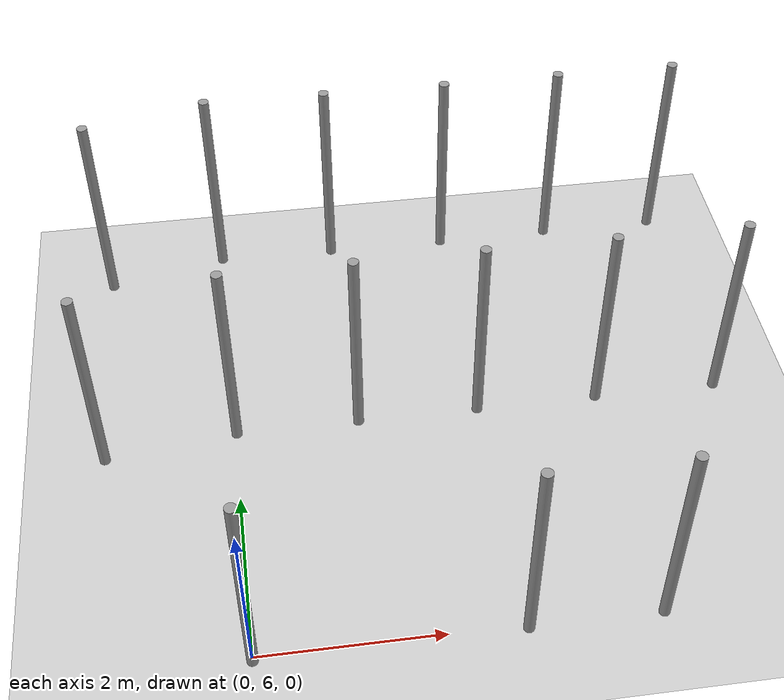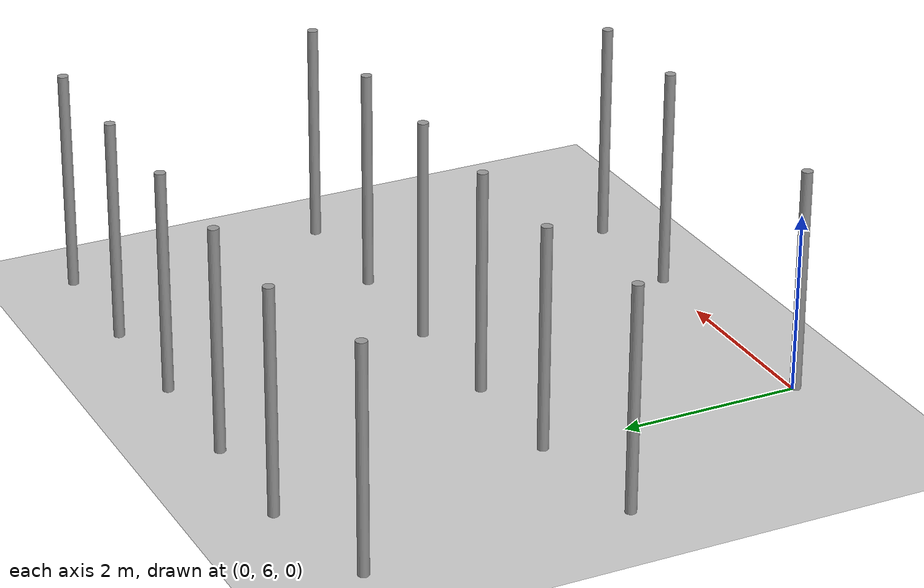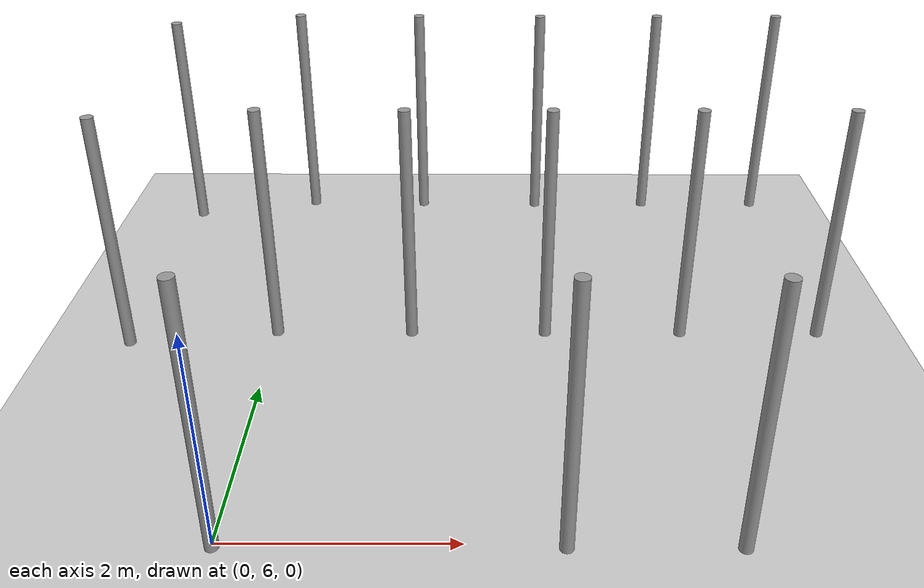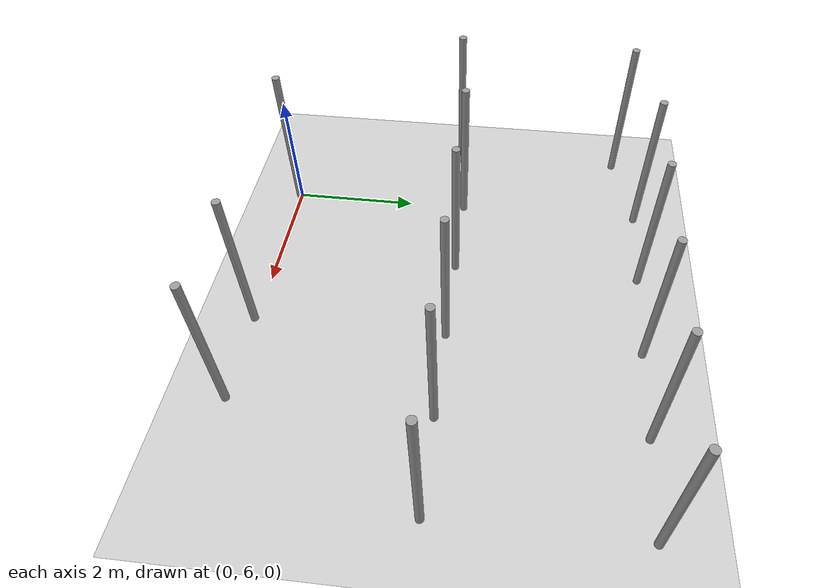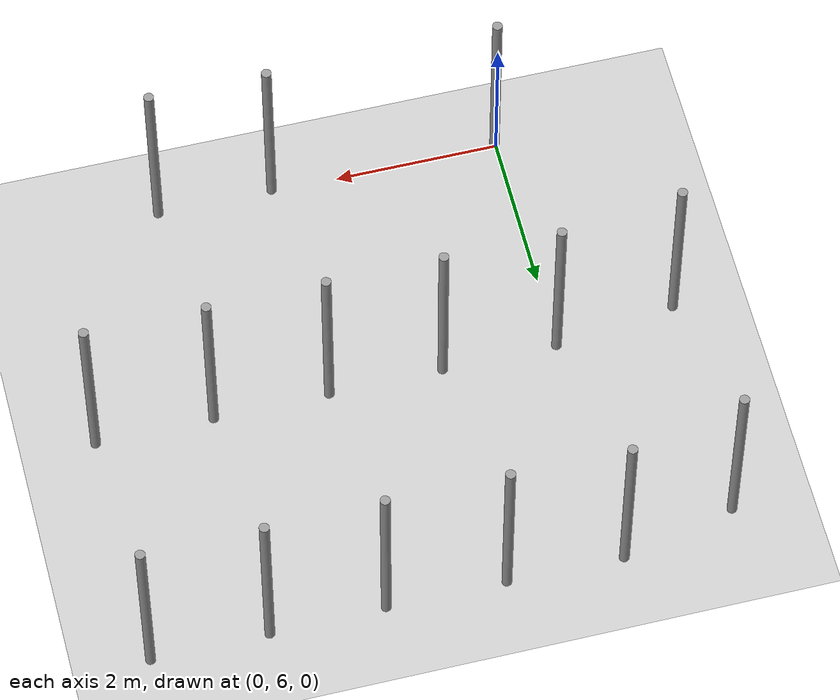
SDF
<sdf version="1.6">
 <world name="default">
  <model name="ground_plane">
   <static>1</static>
   <link name="link">
    <collision name="collision">
     <geometry><plane><normal>0 0 1</normal><size>100 100</size></plane></geometry>
     <surface><friction><ode><mu>100</mu><mu2>50</mu2></ode></friction></surface>
    </collision>
    <visual name="visual">
     <cast_shadows>0</cast_shadows>
     <geometry><plane><normal>0 0 1</normal><size>100 100</size></plane></geometry>
     <material>
      <script><uri>file://media/materials/scripts/gazebo.material</uri><name>Gazebo/Grey</name></script>
     </material>
    </visual>
   </link>
  </model>
  <model name="pole">
   <link name="link_0">
    <inertial>
     <mass>0.0364582</mass>
     <inertia>
      <ixx>0.00312124</ixx>
      <ixy>0</ixy>
      <ixz>0</ixz>
      <iyy>0.00312124</iyy>
      <iyz>0</iyz>
      <izz>0.00016615</izz>
     </inertia>
    </inertial>
    <visual name="visual">
     <geometry><cylinder><radius>0.06</radius><length>2.5</length></cylinder></geometry>
     <material>
      <lighting>1</lighting>
      <script><uri>file://media/materials/scripts/gazebo.material</uri><name>Gazebo/Grey</name></script>
      <ambient>0.3 0.3 0.3 1</ambient>
      <diffuse>0.7 0.7 0.7 1</diffuse>
      <specular>0.01 0.01 0.01 1</specular>
      <emissive>0 0 0 1</emissive>
      <shader type="vertex"><normal_map>__default__</normal_map></shader>
     </material>
    </visual>
    <collision name="collision">
     <geometry><cylinder><radius>0.06</radius><length>2.5</length></cylinder></geometry>
     <surface>
      <friction>
       <ode><mu>1</mu><mu2>1</mu2><fdir1>0 0 0</fdir1><slip1>0</slip1><slip2>0</slip2></ode>
       <torsional>
        <coefficient>1</coefficient>
        <patch_radius>0</patch_radius>
        <surface_radius>0</surface_radius>
        <use_patch_radius>1</use_patch_radius>
        <ode><slip>0</slip></ode>
       </torsional>
      </friction>
      <bounce><restitution_coefficient>0</restitution_coefficient><threshold>1e+06</threshold></bounce>
      <contact>
       <collide_without_contact>0</collide_without_contact>
       <collide_without_contact_bitmask>1</collide_without_contact_bitmask>
       <collide_bitmask>1</collide_bitmask>
       <ode>
        <soft_cfm>0</soft_cfm>
        <soft_erp>0.2</soft_erp>
        <kp>1e+13</kp>
        <kd>1</kd>
        <max_vel>0.01</max_vel>
        <min_depth>0</min_depth>
       </ode>
       <bullet>
        <split_impulse>1</split_impulse>
        <split_impulse_penetration_threshold>-0.01</split_impulse_penetration_threshold>
        <soft_cfm>0</soft_cfm>
        <soft_erp>0.2</soft_erp>
        <kp>1e+13</kp>
        <kd>1</kd>
       </bullet>
      </contact>
     </surface>
    </collision>
   </link>
   <static>0</static>
   <pose>0.00678 5.96185 1.25 -1e-06 -0 -0.022118</pose>
  </model>
  <model name="pole_0">
   <link name="link_0">
    <inertial>
     <mass>0.0364582</mass>
     <inertia>
      <ixx>0.00312124</ixx>
      <ixy>0</ixy>
      <ixz>0</ixz>
      <iyy>0.00312124</iyy>
      <iyz>0</iyz>
      <izz>0.00016615</izz>
     </inertia>
    </inertial>
    <visual name="visual">
     <geometry><cylinder><radius>0.06</radius><length>2.5</length></cylinder></geometry>
     <material>
      <lighting>1</lighting>
      <script><uri>file://media/materials/scripts/gazebo.material</uri><name>Gazebo/Grey</name></script>
      <ambient>0.3 0.3 0.3 1</ambient>
      <diffuse>0.7 0.7 0.7 1</diffuse>
      <specular>0.01 0.01 0.01 1</specular>
      <emissive>0 0 0 1</emissive>
      <shader type="vertex"><normal_map>__default__</normal_map></shader>
     </material>
    </visual>
    <collision name="collision">
     <geometry><cylinder><radius>0.06</radius><length>2.5</length></cylinder></geometry>
     <surface>
      <friction>
       <ode><mu>1</mu><mu2>1</mu2><fdir1>0 0 0</fdir1><slip1>0</slip1><slip2>0</slip2></ode>
       <torsional>
        <coefficient>1</coefficient>
        <patch_radius>0</patch_radius>
        <surface_radius>0</surface_radius>
        <use_patch_radius>1</use_patch_radius>
        <ode><slip>0</slip></ode>
       </torsional>
      </friction>
      <bounce><restitution_coefficient>0</restitution_coefficient><threshold>1e+06</threshold></bounce>
      <contact>
       <collide_without_contact>0</collide_without_contact>
       <collide_without_contact_bitmask>1</collide_without_contact_bitmask>
       <collide_bitmask>1</collide_bitmask>
       <ode>
        <soft_cfm>0</soft_cfm>
        <soft_erp>0.2</soft_erp>
        <kp>1e+13</kp>
        <kd>1</kd>
        <max_vel>0.01</max_vel>
        <min_depth>0</min_depth>
       </ode>
       <bullet>
        <split_impulse>1</split_impulse>
        <split_impulse_penetration_threshold>-0.01</split_impulse_penetration_threshold>
        <soft_cfm>0</soft_cfm>
        <soft_erp>0.2</soft_erp>
        <kp>1e+13</kp>
        <kd>1</kd>
       </bullet>
      </contact>
     </surface>
    </collision>
   </link>
   <static>0</static>
   <pose>0.013583 8.94195 1.24999 -1e-06 1e-06 -0.025233</pose>
  </model>
  <model name="pole_1">
   <link name="link_0">
    <inertial>
     <mass>0.0364582</mass>
     <inertia>
      <ixx>0.00312124</ixx>
      <ixy>0</ixy>
      <ixz>0</ixz>
      <iyy>0.00312124</iyy>
      <iyz>0</iyz>
      <izz>0.00016615</izz>
     </inertia>
    </inertial>
    <visual name="visual">
     <geometry><cylinder><radius>0.06</radius><length>2.5</length></cylinder></geometry>
     <material>
      <lighting>1</lighting>
      <script><uri>file://media/materials/scripts/gazebo.material</uri><name>Gazebo/Grey</name></script>
      <ambient>0.3 0.3 0.3 1</ambient>
      <diffuse>0.7 0.7 0.7 1</diffuse>
      <specular>0.01 0.01 0.01 1</specular>
      <emissive>0 0 0 1</emissive>
      <shader type="vertex"><normal_map>__default__</normal_map></shader>
     </material>
    </visual>
    <collision name="collision">
     <geometry><cylinder><radius>0.06</radius><length>2.5</length></cylinder></geometry>
     <surface>
      <friction>
       <ode><mu>1</mu><mu2>1</mu2><fdir1>0 0 0</fdir1><slip1>0</slip1><slip2>0</slip2></ode>
       <torsional>
        <coefficient>1</coefficient>
        <patch_radius>0</patch_radius>
        <surface_radius>0</surface_radius>
        <use_patch_radius>1</use_patch_radius>
        <ode><slip>0</slip></ode>
       </torsional>
      </friction>
      <bounce><restitution_coefficient>0</restitution_coefficient><threshold>1e+06</threshold></bounce>
      <contact>
       <collide_without_contact>0</collide_without_contact>
       <collide_without_contact_bitmask>1</collide_without_contact_bitmask>
       <collide_bitmask>1</collide_bitmask>
       <ode>
        <soft_cfm>0</soft_cfm>
        <soft_erp>0.2</soft_erp>
        <kp>1e+13</kp>
        <kd>1</kd>
        <max_vel>0.01</max_vel>
        <min_depth>0</min_depth>
       </ode>
       <bullet>
        <split_impulse>1</split_impulse>
        <split_impulse_penetration_threshold>-0.01</split_impulse_penetration_threshold>
        <soft_cfm>0</soft_cfm>
        <soft_erp>0.2</soft_erp>
        <kp>1e+13</kp>
        <kd>1</kd>
       </bullet>
      </contact>
     </surface>
    </collision>
   </link>
   <static>0</static>
   <pose>-0.008042 11.9217 1.25 -1e-06 -1e-06 -0.024271</pose>
  </model>
  <model name="pole_13">
   <link name="link_0">
    <inertial>
     <mass>0.0364582</mass>
     <inertia>
      <ixx>0.00312124</ixx>
      <ixy>0</ixy>
      <ixz>0</ixz>
      <iyy>0.00312124</iyy>
      <iyz>0</iyz>
      <izz>0.00016615</izz>
     </inertia>
    </inertial>
    <visual name="visual">
     <geometry><cylinder><radius>0.06</radius><length>2.5</length></cylinder></geometry>
     <material>
      <lighting>1</lighting>
      <script><uri>file://media/materials/scripts/gazebo.material</uri><name>Gazebo/Grey</name></script>
      <ambient>0.3 0.3 0.3 1</ambient>
      <diffuse>0.7 0.7 0.7 1</diffuse>
      <specular>0.01 0.01 0.01 1</specular>
      <emissive>0 0 0 1</emissive>
      <shader type="vertex"><normal_map>__default__</normal_map></shader>
     </material>
    </visual>
    <collision name="collision">
     <geometry><cylinder><radius>0.06</radius><length>2.5</length></cylinder></geometry>
     <surface>
      <friction>
       <ode><mu>1</mu><mu2>1</mu2><fdir1>0 0 0</fdir1><slip1>0</slip1><slip2>0</slip2></ode>
       <torsional>
        <coefficient>1</coefficient>
        <patch_radius>0</patch_radius>
        <surface_radius>0</surface_radius>
        <use_patch_radius>1</use_patch_radius>
        <ode><slip>0</slip></ode>
       </torsional>
      </friction>
      <bounce><restitution_coefficient>0</restitution_coefficient><threshold>1e+06</threshold></bounce>
      <contact>
       <collide_without_contact>0</collide_without_contact>
       <collide_without_contact_bitmask>1</collide_without_contact_bitmask>
       <collide_bitmask>1</collide_bitmask>
       <ode>
        <soft_cfm>0</soft_cfm>
        <soft_erp>0.2</soft_erp>
        <kp>1e+13</kp>
        <kd>1</kd>
        <max_vel>0.01</max_vel>
        <min_depth>0</min_depth>
       </ode>
       <bullet>
        <split_impulse>1</split_impulse>
        <split_impulse_penetration_threshold>-0.01</split_impulse_penetration_threshold>
        <soft_cfm>0</soft_cfm>
        <soft_erp>0.2</soft_erp>
        <kp>1e+13</kp>
        <kd>1</kd>
       </bullet>
      </contact>
     </surface>
    </collision>
   </link>
   <static>0</static>
   <pose>2.80811 5.96188 1.25 -1e-06 1e-06 -0.01867</pose>
  </model>
  <model name="pole_14">
   <link name="link_0">
    <inertial>
     <mass>0.0364582</mass>
     <inertia>
      <ixx>0.00312124</ixx>
      <ixy>0</ixy>
      <ixz>0</ixz>
      <iyy>0.00312124</iyy>
      <iyz>0</iyz>
      <izz>0.00016615</izz>
     </inertia>
    </inertial>
    <visual name="visual">
     <geometry><cylinder><radius>0.06</radius><length>2.5</length></cylinder></geometry>
     <material>
      <lighting>1</lighting>
      <script><uri>file://media/materials/scripts/gazebo.material</uri><name>Gazebo/Grey</name></script>
      <ambient>0.3 0.3 0.3 1</ambient>
      <diffuse>0.7 0.7 0.7 1</diffuse>
      <specular>0.01 0.01 0.01 1</specular>
      <emissive>0 0 0 1</emissive>
      <shader type="vertex"><normal_map>__default__</normal_map></shader>
     </material>
    </visual>
    <collision name="collision">
     <geometry><cylinder><radius>0.06</radius><length>2.5</length></cylinder></geometry>
     <surface>
      <friction>
       <ode><mu>1</mu><mu2>1</mu2><fdir1>0 0 0</fdir1><slip1>0</slip1><slip2>0</slip2></ode>
       <torsional>
        <coefficient>1</coefficient>
        <patch_radius>0</patch_radius>
        <surface_radius>0</surface_radius>
        <use_patch_radius>1</use_patch_radius>
        <ode><slip>0</slip></ode>
       </torsional>
      </friction>
      <bounce><restitution_coefficient>0</restitution_coefficient><threshold>1e+06</threshold></bounce>
      <contact>
       <collide_without_contact>0</collide_without_contact>
       <collide_without_contact_bitmask>1</collide_without_contact_bitmask>
       <collide_bitmask>1</collide_bitmask>
       <ode>
        <soft_cfm>0</soft_cfm>
        <soft_erp>0.2</soft_erp>
        <kp>1e+13</kp>
        <kd>1</kd>
        <max_vel>0.01</max_vel>
        <min_depth>0</min_depth>
       </ode>
       <bullet>
        <split_impulse>1</split_impulse>
        <split_impulse_penetration_threshold>-0.01</split_impulse_penetration_threshold>
        <soft_cfm>0</soft_cfm>
        <soft_erp>0.2</soft_erp>
        <kp>1e+13</kp>
        <kd>1</kd>
       </bullet>
      </contact>
     </surface>
    </collision>
   </link>
   <static>0</static>
   <pose>4.21959 5.96159 1.24999 -1e-06 3e-06 -0.017961</pose>
  </model>
  <model name="pole_16">
   <link name="link_0">
    <inertial>
     <mass>0.0364582</mass>
     <inertia>
      <ixx>0.00312124</ixx>
      <ixy>0</ixy>
      <ixz>0</ixz>
      <iyy>0.00312124</iyy>
      <iyz>0</iyz>
      <izz>0.00016615</izz>
     </inertia>
    </inertial>
    <visual name="visual">
     <geometry><cylinder><radius>0.06</radius><length>2.5</length></cylinder></geometry>
     <material>
      <lighting>1</lighting>
      <script><uri>file://media/materials/scripts/gazebo.material</uri><name>Gazebo/Grey</name></script>
      <ambient>0.3 0.3 0.3 1</ambient>
      <diffuse>0.7 0.7 0.7 1</diffuse>
      <specular>0.01 0.01 0.01 1</specular>
      <emissive>0 0 0 1</emissive>
      <shader type="vertex"><normal_map>__default__</normal_map></shader>
     </material>
    </visual>
    <collision name="collision">
     <geometry><cylinder><radius>0.06</radius><length>2.5</length></cylinder></geometry>
     <surface>
      <friction>
       <ode><mu>1</mu><mu2>1</mu2><fdir1>0 0 0</fdir1><slip1>0</slip1><slip2>0</slip2></ode>
       <torsional>
        <coefficient>1</coefficient>
        <patch_radius>0</patch_radius>
        <surface_radius>0</surface_radius>
        <use_patch_radius>1</use_patch_radius>
        <ode><slip>0</slip></ode>
       </torsional>
      </friction>
      <bounce><restitution_coefficient>0</restitution_coefficient><threshold>1e+06</threshold></bounce>
      <contact>
       <collide_without_contact>0</collide_without_contact>
       <collide_without_contact_bitmask>1</collide_without_contact_bitmask>
       <collide_bitmask>1</collide_bitmask>
       <ode>
        <soft_cfm>0</soft_cfm>
        <soft_erp>0.2</soft_erp>
        <kp>1e+13</kp>
        <kd>1</kd>
        <max_vel>0.01</max_vel>
        <min_depth>0</min_depth>
       </ode>
       <bullet>
        <split_impulse>1</split_impulse>
        <split_impulse_penetration_threshold>-0.01</split_impulse_penetration_threshold>
        <soft_cfm>0</soft_cfm>
        <soft_erp>0.2</soft_erp>
        <kp>1e+13</kp>
        <kd>1</kd>
       </bullet>
      </contact>
     </surface>
    </collision>
   </link>
   <static>0</static>
   <pose>1.4132 8.94132 1.25 0 -1e-06 -0.018099</pose>
  </model>
  <model name="pole_17">
   <link name="link_0">
    <inertial>
     <mass>0.0364582</mass>
     <inertia>
      <ixx>0.00312124</ixx>
      <ixy>0</ixy>
      <ixz>0</ixz>
      <iyy>0.00312124</iyy>
      <iyz>0</iyz>
      <izz>0.00016615</izz>
     </inertia>
    </inertial>
    <visual name="visual">
     <geometry><cylinder><radius>0.06</radius><length>2.5</length></cylinder></geometry>
     <material>
      <lighting>1</lighting>
      <script><uri>file://media/materials/scripts/gazebo.material</uri><name>Gazebo/Grey</name></script>
      <ambient>0.3 0.3 0.3 1</ambient>
      <diffuse>0.7 0.7 0.7 1</diffuse>
      <specular>0.01 0.01 0.01 1</specular>
      <emissive>0 0 0 1</emissive>
      <shader type="vertex"><normal_map>__default__</normal_map></shader>
     </material>
    </visual>
    <collision name="collision">
     <geometry><cylinder><radius>0.06</radius><length>2.5</length></cylinder></geometry>
     <surface>
      <friction>
       <ode><mu>1</mu><mu2>1</mu2><fdir1>0 0 0</fdir1><slip1>0</slip1><slip2>0</slip2></ode>
       <torsional>
        <coefficient>1</coefficient>
        <patch_radius>0</patch_radius>
        <surface_radius>0</surface_radius>
        <use_patch_radius>1</use_patch_radius>
        <ode><slip>0</slip></ode>
       </torsional>
      </friction>
      <bounce><restitution_coefficient>0</restitution_coefficient><threshold>1e+06</threshold></bounce>
      <contact>
       <collide_without_contact>0</collide_without_contact>
       <collide_without_contact_bitmask>1</collide_without_contact_bitmask>
       <collide_bitmask>1</collide_bitmask>
       <ode>
        <soft_cfm>0</soft_cfm>
        <soft_erp>0.2</soft_erp>
        <kp>1e+13</kp>
        <kd>1</kd>
        <max_vel>0.01</max_vel>
        <min_depth>0</min_depth>
       </ode>
       <bullet>
        <split_impulse>1</split_impulse>
        <split_impulse_penetration_threshold>-0.01</split_impulse_penetration_threshold>
        <soft_cfm>0</soft_cfm>
        <soft_erp>0.2</soft_erp>
        <kp>1e+13</kp>
        <kd>1</kd>
       </bullet>
      </contact>
     </surface>
    </collision>
   </link>
   <static>0</static>
   <pose>2.79995 8.9414 1.25 -1e-06 1e-06 -0.016553</pose>
  </model>
  <model name="pole_18">
   <link name="link_0">
    <inertial>
     <mass>0.0364582</mass>
     <inertia>
      <ixx>0.00312124</ixx>
      <ixy>0</ixy>
      <ixz>0</ixz>
      <iyy>0.00312124</iyy>
      <iyz>0</iyz>
      <izz>0.00016615</izz>
     </inertia>
    </inertial>
    <visual name="visual">
     <geometry><cylinder><radius>0.06</radius><length>2.5</length></cylinder></geometry>
     <material>
      <lighting>1</lighting>
      <script><uri>file://media/materials/scripts/gazebo.material</uri><name>Gazebo/Grey</name></script>
      <ambient>0.3 0.3 0.3 1</ambient>
      <diffuse>0.7 0.7 0.7 1</diffuse>
      <specular>0.01 0.01 0.01 1</specular>
      <emissive>0 0 0 1</emissive>
      <shader type="vertex"><normal_map>__default__</normal_map></shader>
     </material>
    </visual>
    <collision name="collision">
     <geometry><cylinder><radius>0.06</radius><length>2.5</length></cylinder></geometry>
     <surface>
      <friction>
       <ode><mu>1</mu><mu2>1</mu2><fdir1>0 0 0</fdir1><slip1>0</slip1><slip2>0</slip2></ode>
       <torsional>
        <coefficient>1</coefficient>
        <patch_radius>0</patch_radius>
        <surface_radius>0</surface_radius>
        <use_patch_radius>1</use_patch_radius>
        <ode><slip>0</slip></ode>
       </torsional>
      </friction>
      <bounce><restitution_coefficient>0</restitution_coefficient><threshold>1e+06</threshold></bounce>
      <contact>
       <collide_without_contact>0</collide_without_contact>
       <collide_without_contact_bitmask>1</collide_without_contact_bitmask>
       <collide_bitmask>1</collide_bitmask>
       <ode>
        <soft_cfm>0</soft_cfm>
        <soft_erp>0.2</soft_erp>
        <kp>1e+13</kp>
        <kd>1</kd>
        <max_vel>0.01</max_vel>
        <min_depth>0</min_depth>
       </ode>
       <bullet>
        <split_impulse>1</split_impulse>
        <split_impulse_penetration_threshold>-0.01</split_impulse_penetration_threshold>
        <soft_cfm>0</soft_cfm>
        <soft_erp>0.2</soft_erp>
        <kp>1e+13</kp>
        <kd>1</kd>
       </bullet>
      </contact>
     </surface>
    </collision>
   </link>
   <static>0</static>
   <pose>4.20395 8.94148 1.25 -1e-06 -0 -0.013713</pose>
  </model>
  <model name="pole_19">
   <link name="link_0">
    <inertial>
     <mass>0.0364582</mass>
     <inertia>
      <ixx>0.00312124</ixx>
      <ixy>0</ixy>
      <ixz>0</ixz>
      <iyy>0.00312124</iyy>
      <iyz>0</iyz>
      <izz>0.00016615</izz>
     </inertia>
    </inertial>
    <visual name="visual">
     <geometry><cylinder><radius>0.06</radius><length>2.5</length></cylinder></geometry>
     <material>
      <lighting>1</lighting>
      <script><uri>file://media/materials/scripts/gazebo.material</uri><name>Gazebo/Grey</name></script>
      <ambient>0.3 0.3 0.3 1</ambient>
      <diffuse>0.7 0.7 0.7 1</diffuse>
      <specular>0.01 0.01 0.01 1</specular>
      <emissive>0 0 0 1</emissive>
      <shader type="vertex"><normal_map>__default__</normal_map></shader>
     </material>
    </visual>
    <collision name="collision">
     <geometry><cylinder><radius>0.06</radius><length>2.5</length></cylinder></geometry>
     <surface>
      <friction>
       <ode><mu>1</mu><mu2>1</mu2><fdir1>0 0 0</fdir1><slip1>0</slip1><slip2>0</slip2></ode>
       <torsional>
        <coefficient>1</coefficient>
        <patch_radius>0</patch_radius>
        <surface_radius>0</surface_radius>
        <use_patch_radius>1</use_patch_radius>
        <ode><slip>0</slip></ode>
       </torsional>
      </friction>
      <bounce><restitution_coefficient>0</restitution_coefficient><threshold>1e+06</threshold></bounce>
      <contact>
       <collide_without_contact>0</collide_without_contact>
       <collide_without_contact_bitmask>1</collide_without_contact_bitmask>
       <collide_bitmask>1</collide_bitmask>
       <ode>
        <soft_cfm>0</soft_cfm>
        <soft_erp>0.2</soft_erp>
        <kp>1e+13</kp>
        <kd>1</kd>
        <max_vel>0.01</max_vel>
        <min_depth>0</min_depth>
       </ode>
       <bullet>
        <split_impulse>1</split_impulse>
        <split_impulse_penetration_threshold>-0.01</split_impulse_penetration_threshold>
        <soft_cfm>0</soft_cfm>
        <soft_erp>0.2</soft_erp>
        <kp>1e+13</kp>
        <kd>1</kd>
       </bullet>
      </contact>
     </surface>
    </collision>
   </link>
   <static>0</static>
   <pose>5.62943 8.94134 1.24999 -1e-06 -3e-06 -0.016946</pose>
  </model>
  <model name="pole_20">
   <link name="link_0">
    <inertial>
     <mass>0.0364582</mass>
     <inertia>
      <ixx>0.00312124</ixx>
      <ixy>0</ixy>
      <ixz>0</ixz>
      <iyy>0.00312124</iyy>
      <iyz>0</iyz>
      <izz>0.00016615</izz>
     </inertia>
    </inertial>
    <visual name="visual">
     <geometry><cylinder><radius>0.06</radius><length>2.5</length></cylinder></geometry>
     <material>
      <lighting>1</lighting>
      <script><uri>file://media/materials/scripts/gazebo.material</uri><name>Gazebo/Grey</name></script>
      <ambient>0.3 0.3 0.3 1</ambient>
      <diffuse>0.7 0.7 0.7 1</diffuse>
      <specular>0.01 0.01 0.01 1</specular>
      <emissive>0 0 0 1</emissive>
      <shader type="vertex"><normal_map>__default__</normal_map></shader>
     </material>
    </visual>
    <collision name="collision">
     <geometry><cylinder><radius>0.06</radius><length>2.5</length></cylinder></geometry>
     <surface>
      <friction>
       <ode><mu>1</mu><mu2>1</mu2><fdir1>0 0 0</fdir1><slip1>0</slip1><slip2>0</slip2></ode>
       <torsional>
        <coefficient>1</coefficient>
        <patch_radius>0</patch_radius>
        <surface_radius>0</surface_radius>
        <use_patch_radius>1</use_patch_radius>
        <ode><slip>0</slip></ode>
       </torsional>
      </friction>
      <bounce><restitution_coefficient>0</restitution_coefficient><threshold>1e+06</threshold></bounce>
      <contact>
       <collide_without_contact>0</collide_without_contact>
       <collide_without_contact_bitmask>1</collide_without_contact_bitmask>
       <collide_bitmask>1</collide_bitmask>
       <ode>
        <soft_cfm>0</soft_cfm>
        <soft_erp>0.2</soft_erp>
        <kp>1e+13</kp>
        <kd>1</kd>
        <max_vel>0.01</max_vel>
        <min_depth>0</min_depth>
       </ode>
       <bullet>
        <split_impulse>1</split_impulse>
        <split_impulse_penetration_threshold>-0.01</split_impulse_penetration_threshold>
        <soft_cfm>0</soft_cfm>
        <soft_erp>0.2</soft_erp>
        <kp>1e+13</kp>
        <kd>1</kd>
       </bullet>
      </contact>
     </surface>
    </collision>
   </link>
   <static>0</static>
   <pose>1.39587 11.9013 1.24999 -0 -1e-06 -0.011194</pose>
  </model>
  <model name="pole_21">
   <link name="link_0">
    <inertial>
     <mass>0.0364582</mass>
     <inertia>
      <ixx>0.00312124</ixx>
      <ixy>0</ixy>
      <ixz>0</ixz>
      <iyy>0.00312124</iyy>
      <iyz>0</iyz>
      <izz>0.00016615</izz>
     </inertia>
    </inertial>
    <visual name="visual">
     <geometry><cylinder><radius>0.06</radius><length>2.5</length></cylinder></geometry>
     <material>
      <lighting>1</lighting>
      <script><uri>file://media/materials/scripts/gazebo.material</uri><name>Gazebo/Grey</name></script>
      <ambient>0.3 0.3 0.3 1</ambient>
      <diffuse>0.7 0.7 0.7 1</diffuse>
      <specular>0.01 0.01 0.01 1</specular>
      <emissive>0 0 0 1</emissive>
      <shader type="vertex"><normal_map>__default__</normal_map></shader>
     </material>
    </visual>
    <collision name="collision">
     <geometry><cylinder><radius>0.06</radius><length>2.5</length></cylinder></geometry>
     <surface>
      <friction>
       <ode><mu>1</mu><mu2>1</mu2><fdir1>0 0 0</fdir1><slip1>0</slip1><slip2>0</slip2></ode>
       <torsional>
        <coefficient>1</coefficient>
        <patch_radius>0</patch_radius>
        <surface_radius>0</surface_radius>
        <use_patch_radius>1</use_patch_radius>
        <ode><slip>0</slip></ode>
       </torsional>
      </friction>
      <bounce><restitution_coefficient>0</restitution_coefficient><threshold>1e+06</threshold></bounce>
      <contact>
       <collide_without_contact>0</collide_without_contact>
       <collide_without_contact_bitmask>1</collide_without_contact_bitmask>
       <collide_bitmask>1</collide_bitmask>
       <ode>
        <soft_cfm>0</soft_cfm>
        <soft_erp>0.2</soft_erp>
        <kp>1e+13</kp>
        <kd>1</kd>
        <max_vel>0.01</max_vel>
        <min_depth>0</min_depth>
       </ode>
       <bullet>
        <split_impulse>1</split_impulse>
        <split_impulse_penetration_threshold>-0.01</split_impulse_penetration_threshold>
        <soft_cfm>0</soft_cfm>
        <soft_erp>0.2</soft_erp>
        <kp>1e+13</kp>
        <kd>1</kd>
       </bullet>
      </contact>
     </surface>
    </collision>
   </link>
   <static>0</static>
   <pose>2.83064 11.888 1.24998 -6.5e-05 0.000212 0.452306</pose>
  </model>
  <model name="pole_22">
   <link name="link_0">
    <inertial>
     <mass>0.0364582</mass>
     <inertia>
      <ixx>0.00312124</ixx>
      <ixy>0</ixy>
      <ixz>0</ixz>
      <iyy>0.00312124</iyy>
      <iyz>0</iyz>
      <izz>0.00016615</izz>
     </inertia>
    </inertial>
    <visual name="visual">
     <geometry><cylinder><radius>0.06</radius><length>2.5</length></cylinder></geometry>
     <material>
      <lighting>1</lighting>
      <script><uri>file://media/materials/scripts/gazebo.material</uri><name>Gazebo/Grey</name></script>
      <ambient>0.3 0.3 0.3 1</ambient>
      <diffuse>0.7 0.7 0.7 1</diffuse>
      <specular>0.01 0.01 0.01 1</specular>
      <emissive>0 0 0 1</emissive>
      <shader type="vertex"><normal_map>__default__</normal_map></shader>
     </material>
    </visual>
    <collision name="collision">
     <geometry><cylinder><radius>0.06</radius><length>2.5</length></cylinder></geometry>
     <surface>
      <friction>
       <ode><mu>1</mu><mu2>1</mu2><fdir1>0 0 0</fdir1><slip1>0</slip1><slip2>0</slip2></ode>
       <torsional>
        <coefficient>1</coefficient>
        <patch_radius>0</patch_radius>
        <surface_radius>0</surface_radius>
        <use_patch_radius>1</use_patch_radius>
        <ode><slip>0</slip></ode>
       </torsional>
      </friction>
      <bounce><restitution_coefficient>0</restitution_coefficient><threshold>1e+06</threshold></bounce>
      <contact>
       <collide_without_contact>0</collide_without_contact>
       <collide_without_contact_bitmask>1</collide_without_contact_bitmask>
       <collide_bitmask>1</collide_bitmask>
       <ode>
        <soft_cfm>0</soft_cfm>
        <soft_erp>0.2</soft_erp>
        <kp>1e+13</kp>
        <kd>1</kd>
        <max_vel>0.01</max_vel>
        <min_depth>0</min_depth>
       </ode>
       <bullet>
        <split_impulse>1</split_impulse>
        <split_impulse_penetration_threshold>-0.01</split_impulse_penetration_threshold>
        <soft_cfm>0</soft_cfm>
        <soft_erp>0.2</soft_erp>
        <kp>1e+13</kp>
        <kd>1</kd>
       </bullet>
      </contact>
     </surface>
    </collision>
   </link>
   <static>0</static>
   <pose>4.21215 11.901 1.24999 0 0 -0.009816</pose>
  </model>
  <model name="pole_23">
   <link name="link_0">
    <inertial>
     <mass>0.0364582</mass>
     <inertia>
      <ixx>0.00312124</ixx>
      <ixy>0</ixy>
      <ixz>0</ixz>
      <iyy>0.00312124</iyy>
      <iyz>0</iyz>
      <izz>0.00016615</izz>
     </inertia>
    </inertial>
    <visual name="visual">
     <geometry><cylinder><radius>0.06</radius><length>2.5</length></cylinder></geometry>
     <material>
      <lighting>1</lighting>
      <script><uri>file://media/materials/scripts/gazebo.material</uri><name>Gazebo/Grey</name></script>
      <ambient>0.3 0.3 0.3 1</ambient>
      <diffuse>0.7 0.7 0.7 1</diffuse>
      <specular>0.01 0.01 0.01 1</specular>
      <emissive>0 0 0 1</emissive>
      <shader type="vertex"><normal_map>__default__</normal_map></shader>
     </material>
    </visual>
    <collision name="collision">
     <geometry><cylinder><radius>0.06</radius><length>2.5</length></cylinder></geometry>
     <surface>
      <friction>
       <ode><mu>1</mu><mu2>1</mu2><fdir1>0 0 0</fdir1><slip1>0</slip1><slip2>0</slip2></ode>
       <torsional>
        <coefficient>1</coefficient>
        <patch_radius>0</patch_radius>
        <surface_radius>0</surface_radius>
        <use_patch_radius>1</use_patch_radius>
        <ode><slip>0</slip></ode>
       </torsional>
      </friction>
      <bounce><restitution_coefficient>0</restitution_coefficient><threshold>1e+06</threshold></bounce>
      <contact>
       <collide_without_contact>0</collide_without_contact>
       <collide_without_contact_bitmask>1</collide_without_contact_bitmask>
       <collide_bitmask>1</collide_bitmask>
       <ode>
        <soft_cfm>0</soft_cfm>
        <soft_erp>0.2</soft_erp>
        <kp>1e+13</kp>
        <kd>1</kd>
        <max_vel>0.01</max_vel>
        <min_depth>0</min_depth>
       </ode>
       <bullet>
        <split_impulse>1</split_impulse>
        <split_impulse_penetration_threshold>-0.01</split_impulse_penetration_threshold>
        <soft_cfm>0</soft_cfm>
        <soft_erp>0.2</soft_erp>
        <kp>1e+13</kp>
        <kd>1</kd>
       </bullet>
      </contact>
     </surface>
    </collision>
   </link>
   <static>0</static>
   <pose>5.61616 11.9011 1.24999 -0 -1e-06 -0.012566</pose>
  </model>
  <model name="pole_2_clone_2">
   <link name="link_0">
    <inertial>
     <mass>0.0364582</mass>
     <inertia>
      <ixx>0.00312124</ixx>
      <ixy>0</ixy>
      <ixz>0</ixz>
      <iyy>0.00312124</iyy>
      <iyz>0</iyz>
      <izz>0.00016615</izz>
     </inertia>
    </inertial>
    <visual name="visual">
     <geometry><cylinder><radius>0.06</radius><length>2.5</length></cylinder></geometry>
     <material>
      <lighting>1</lighting>
      <script><uri>file://media/materials/scripts/gazebo.material</uri><name>Gazebo/Grey</name></script>
      <ambient>0.3 0.3 0.3 1</ambient>
      <diffuse>0.7 0.7 0.7 1</diffuse>
      <specular>0.01 0.01 0.01 1</specular>
      <emissive>0 0 0 1</emissive>
      <shader type="vertex"><normal_map>__default__</normal_map></shader>
     </material>
    </visual>
    <collision name="collision">
     <geometry><cylinder><radius>0.06</radius><length>2.5</length></cylinder></geometry>
     <surface>
      <friction>
       <ode><mu>1</mu><mu2>1</mu2><fdir1>0 0 0</fdir1><slip1>0</slip1><slip2>0</slip2></ode>
       <torsional>
        <coefficient>1</coefficient>
        <patch_radius>0</patch_radius>
        <surface_radius>0</surface_radius>
        <use_patch_radius>1</use_patch_radius>
        <ode><slip>0</slip></ode>
       </torsional>
      </friction>
      <bounce><restitution_coefficient>0</restitution_coefficient><threshold>1e+06</threshold></bounce>
      <contact>
       <collide_without_contact>0</collide_without_contact>
       <collide_without_contact_bitmask>1</collide_without_contact_bitmask>
       <collide_bitmask>1</collide_bitmask>
       <ode>
        <soft_cfm>0</soft_cfm>
        <soft_erp>0.2</soft_erp>
        <kp>1e+13</kp>
        <kd>1</kd>
        <max_vel>0.01</max_vel>
        <min_depth>0</min_depth>
       </ode>
       <bullet>
        <split_impulse>1</split_impulse>
        <split_impulse_penetration_threshold>-0.01</split_impulse_penetration_threshold>
        <soft_cfm>0</soft_cfm>
        <soft_erp>0.2</soft_erp>
        <kp>1e+13</kp>
        <kd>1</kd>
       </bullet>
      </contact>
     </surface>
    </collision>
   </link>
   <static>0</static>
   <pose>-1.47766 8.75283 1.25 -1e-06 -0 0.0378</pose>
  </model>
  <model name="pole_2_clone_3">
   <link name="link_0">
    <inertial>
     <mass>0.0364582</mass>
     <inertia>
      <ixx>0.00312124</ixx>
      <ixy>0</ixy>
      <ixz>0</ixz>
      <iyy>0.00312124</iyy>
      <iyz>0</iyz>
      <izz>0.00016615</izz>
     </inertia>
    </inertial>
    <visual name="visual">
     <geometry><cylinder><radius>0.06</radius><length>2.5</length></cylinder></geometry>
     <material>
      <lighting>1</lighting>
      <script><uri>file://media/materials/scripts/gazebo.material</uri><name>Gazebo/Grey</name></script>
      <ambient>0.3 0.3 0.3 1</ambient>
      <diffuse>0.7 0.7 0.7 1</diffuse>
      <specular>0.01 0.01 0.01 1</specular>
      <emissive>0 0 0 1</emissive>
      <shader type="vertex"><normal_map>__default__</normal_map></shader>
     </material>
    </visual>
    <collision name="collision">
     <geometry><cylinder><radius>0.06</radius><length>2.5</length></cylinder></geometry>
     <surface>
      <friction>
       <ode><mu>1</mu><mu2>1</mu2><fdir1>0 0 0</fdir1><slip1>0</slip1><slip2>0</slip2></ode>
       <torsional>
        <coefficient>1</coefficient>
        <patch_radius>0</patch_radius>
        <surface_radius>0</surface_radius>
        <use_patch_radius>1</use_patch_radius>
        <ode><slip>0</slip></ode>
       </torsional>
      </friction>
      <bounce><restitution_coefficient>0</restitution_coefficient><threshold>1e+06</threshold></bounce>
      <contact>
       <collide_without_contact>0</collide_without_contact>
       <collide_without_contact_bitmask>1</collide_without_contact_bitmask>
       <collide_bitmask>1</collide_bitmask>
       <ode>
        <soft_cfm>0</soft_cfm>
        <soft_erp>0.2</soft_erp>
        <kp>1e+13</kp>
        <kd>1</kd>
        <max_vel>0.01</max_vel>
        <min_depth>0</min_depth>
       </ode>
       <bullet>
        <split_impulse>1</split_impulse>
        <split_impulse_penetration_threshold>-0.01</split_impulse_penetration_threshold>
        <soft_cfm>0</soft_cfm>
        <soft_erp>0.2</soft_erp>
        <kp>1e+13</kp>
        <kd>1</kd>
       </bullet>
      </contact>
     </surface>
    </collision>
   </link>
   <static>0</static>
   <pose>-1.3999 11.6006 1.25 0 -0 0.03927</pose>
  </model>
 </world>
</sdf>
